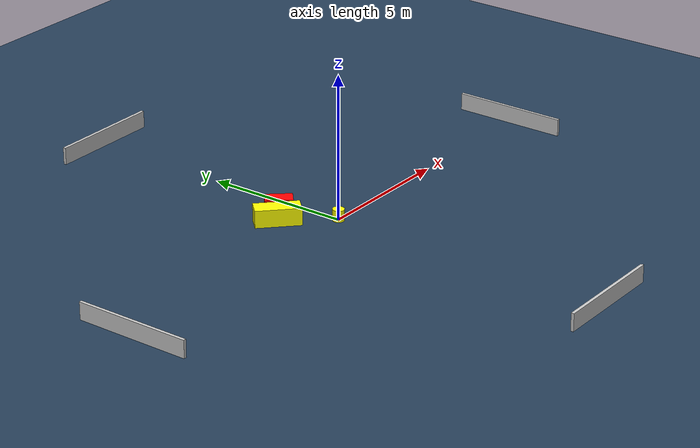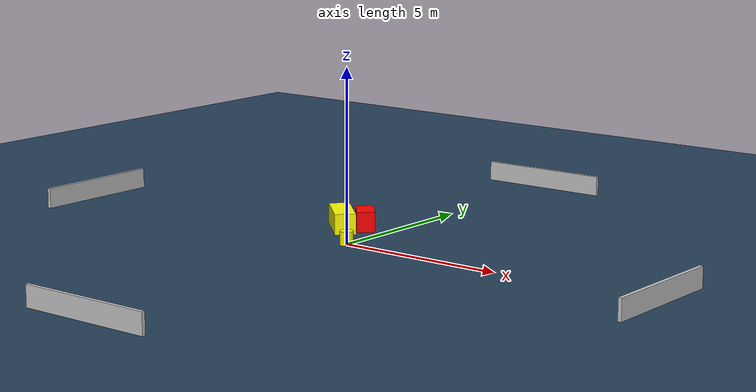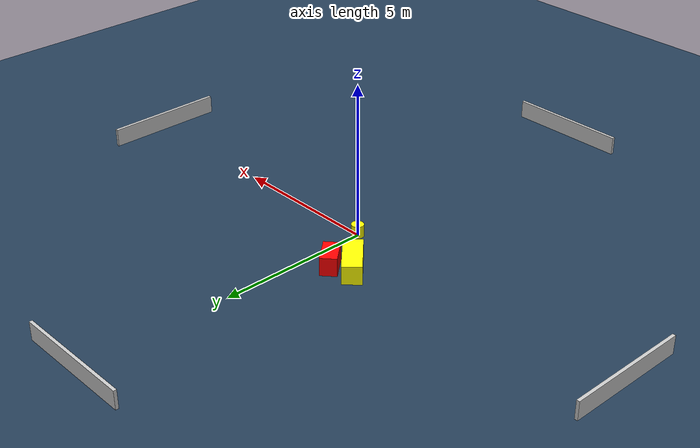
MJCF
<?xml version="1.0" ?>
<mujoco model="generated_environment">
  <option timestep="0.01" integrator="RK4" cone="elliptic"/>
  <default>
    <geom density="1"/>
  </default>
  <asset>
    <texture builtin="gradient" height="3072" name="skybox" rgb1="0.3 0.5 0.7" rgb2="0 0 0" type="skybox" width="512"/>
    <texture builtin="checker" height="300" name="groundplane" rgb1="0.2 0.3 0.4" rgb2="0.1 0.2 0.3" type="2d" width="300"/>
    <material name="groundplane" reflectance="0.2" texrepeat="5 5" texture="groundplane"/>
  </asset>
  <worldbody>
    <light dir="0 0 -1" directional="true" pos="0 0 1.5"/>
    <geom condim="3" friction="0.5 0.005 0.001" material="groundplane" name="floor" pos="0 0 0" size="0 0 0.05" type="plane"/>
    <body name="walls">
      <geom name="wall_1" condim="4" pos="-10.0 0.0 0.3" rgba="0.800000011920929 0.800000011920929 0.800000011920929 1.0" size="0.05 2.0 0.3" type="box"/>
      <geom name="wall_2" condim="4" pos="10.0 0.0 0.3" rgba="0.800000011920929 0.800000011920929 0.800000011920929 1.0" size="0.05 2.0 0.3" type="box"/>
      <geom name="wall_3" condim="4" pos="0.0 -10.0 0.3" rgba="0.800000011920929 0.800000011920929 0.800000011920929 1.0" size="2.0 0.05 0.3" type="box"/>
      <geom name="wall_4" condim="4" pos="0.0 10.0 0.3" rgba="0.800000011920929 0.800000011920929 0.800000011920929 1.0" size="2.0 0.05 0.3" type="box"/>
    </body>
    <body name="robot">
      <joint name="joint_x" type="slide" pos="0 0 0" axis="1 0 0"/>
      <joint name="joint_y" type="slide" pos="0 0 0" axis="0 1 0"/>
      <geom name="robot" type="cylinder" pos="0.0 0.0 0.2" size="0.2 0.2 0.0" mass="5.0" friction="1.0 0.005 0.0001" condim="4" rgba="1.0 1.0 0.0 1.0"/>
    </body>
    <body name="obstacle_1_movable">
      <geom name="obstacle_1_movable" condim="4" pos="-1.3297556969236592 1.4424448158155476 0.3" euler="0 0 45.6836080616356" friction="0.0 0.005 0.001" rgba="1.0 1.0 0.0 1.0" size="0.3063924361709031 0.7644099574852536 0.3" type="box" mass="0.1"/>
      <joint type="free"/>
    </body>
    <body name="obstacle_2_static">
      <geom name="obstacle_2_static" condim="4" pos="-0.7800264506991362 1.8166986515466625 0.3" euler="0 0 131.09480941045817" friction="0.0 0.005 0.001" rgba="1.0 0.0 0.0 1.0" size="0.4643716603435732 0.26300343967286843 0.3" type="box"/>
    </body>
  </worldbody>
  <actuator>
    <motor name="actuator_x" joint="joint_x" gear="1" ctrlrange="-1 1"/>
    <motor name="actuator_y" joint="joint_y" gear="1" ctrlrange="-1 1"/>
  </actuator>
</mujoco>
